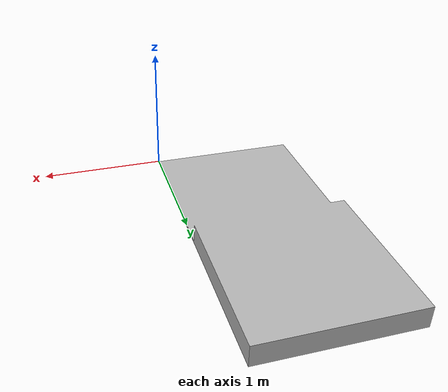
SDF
<?xml version="1.0" ?>
<sdf version="1.6">
  <model name="pallet15">
    <static>true</static>
    <pose>0 0 0 0 0 0</pose>
    <link name="link">
      <collision name="collision">
        <geometry>
          <mesh>
            <scale>0.01 0.01 0.01</scale>
            <uri>model://pallet15/Pallet_15cm.stl</uri>
          </mesh>
        </geometry>
        <surface>
          <friction>
            <ode>
              <mu>100</mu>
              <mu2>50</mu2>
            </ode>
          </friction>
        </surface>
      </collision>
      <visual name="visual">
        <geometry>
          <mesh>
            <scale>0.01 0.01 0.01</scale>
            <uri>model://pallet15/Pallet_15cm.stl</uri>
          </mesh>
        </geometry>
      </visual>
    </link>
  </model>
</sdf>
